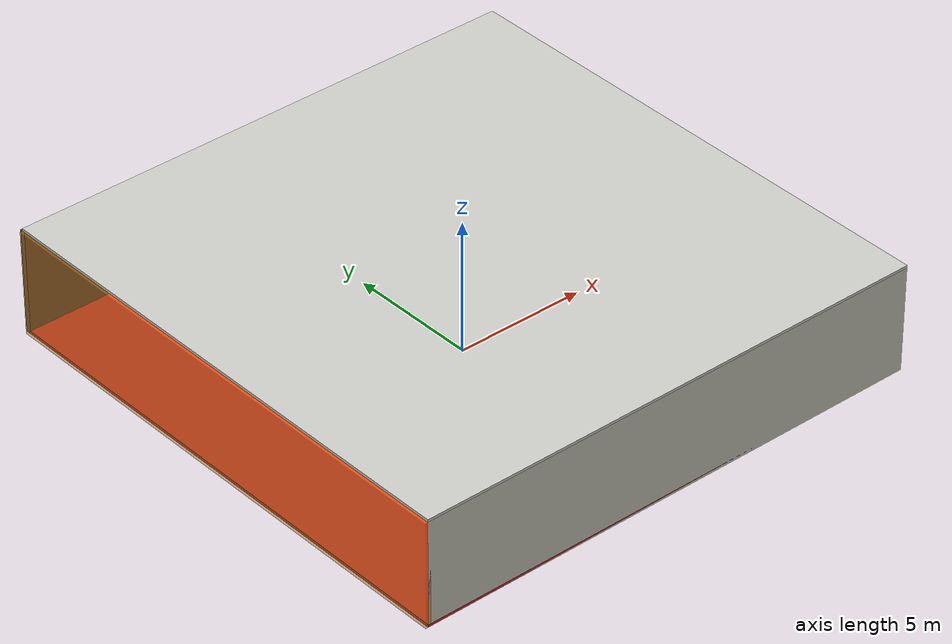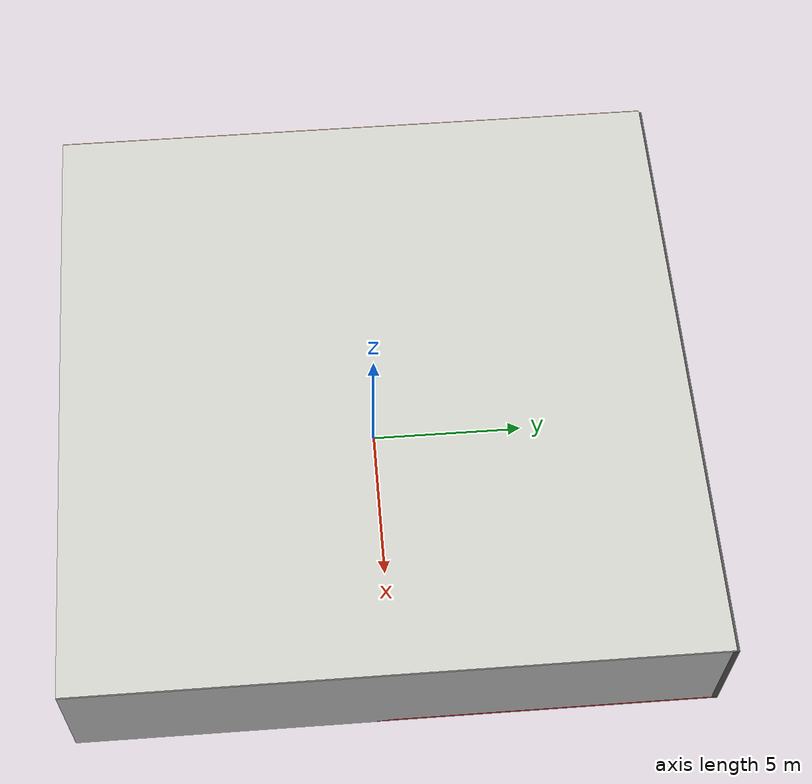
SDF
<sdf version="1.4">
 <world name="default">
  <physics type="ode">
   <max_step_size>0.001</max_step_size>
   <real_time_factor>1</real_time_factor>
   <real_time_update_rate>1000</real_time_update_rate>
   <gravity>0 0 -9.8</gravity>
  </physics>
  <scene><ambient>0.4 0.4 0.4 1</ambient><background>0.7 0.7 0.7 1</background><shadows>1</shadows></scene>
  <model name="Surrounding">
   <static>1</static>
   <link name="Ceiling">
    <collision name="Ceiling_Collision"><geometry><box><size>20 20 0.1</size></box></geometry></collision>
    <visual name="Ceiling_Visual">
     <geometry><box><size>20 20 0.1</size></box></geometry>
     <material>
      <script><uri>file://media/materials/scripts/gazebo.material</uri><name>Gazebo/CeilingTiled</name></script>
     </material>
    </visual>
    <pose>0 0 4.05 0 0 0</pose>
   </link>
   <link name="Wall_South">
    <collision name="Wall_South_Collision">
     <geometry><box><size>20 0 4</size></box></geometry>
     <pose>0 0 2 0 -0 0</pose>
    </collision>
    <visual name="Wall_South_Visual">
     <pose>0 0 2 0 -0 0</pose>
     <geometry><box><size>20 0 4</size></box></geometry>
     <material>
      <script><uri>file://media/materials/scripts/gazebo.material</uri><name>Gazebo/PaintedWall</name></script>
     </material>
    </visual>
    <velocity_decay><linear>0</linear><angular>0</angular></velocity_decay>
    <pose>0 -10 0 0 -0 0</pose>
   </link>
   <link name="Wall_East">
    <collision name="Wall_21_Collision">
     <geometry><box><size>20 0 4</size></box></geometry>
     <pose>0 0 2 0 -0 0</pose>
    </collision>
    <visual name="Wall_21_Visual">
     <pose>0 0 2 0 -0 0</pose>
     <geometry><box><size>20 0 4</size></box></geometry>
     <material>
      <script><uri>file://media/materials/scripts/gazebo.material</uri><name>Gazebo/JointAnchor</name></script>
     </material>
    </visual>
    <velocity_decay><linear>0</linear><angular>0</angular></velocity_decay>
    <pose>10 0 0 0 -0 1.5708</pose>
   </link>
   <link name="Wall_North">
    <collision name="Wall_22_Collision">
     <geometry><box><size>20 0.2 4</size></box></geometry>
     <pose>0 0 2 0 -0 0</pose>
    </collision>
    <visual name="Wall_22_Visual">
     <pose>0 0 2 0 -0 0</pose>
     <geometry><box><size>20 0.2 4</size></box></geometry>
     <material>
      <script><uri>file://media/materials/scripts/gazebo.material</uri><name>Gazebo/Road</name></script>
     </material>
    </visual>
    <velocity_decay><linear>0</linear><angular>0</angular></velocity_decay>
    <pose>0 10 0 0 -0 0</pose>
   </link>
   <link name="Wall_West">
    <collision name="Wall_23_Collision">
     <geometry><box><size>20 0.2 4</size></box></geometry>
     <pose>0 0 2 0 -0 0</pose>
    </collision>
    <visual name="Wall_23_Visual">
     <pose>0 0 2 0 -0 0</pose>
     <geometry><box><size>20 0.2 4</size></box></geometry>
     <material>
      <script>
       <uri>file://media/materials/scripts/gazebo.material</uri>
       <name>Gazebo/OrangeTransparent</name>
      </script>
     </material>
    </visual>
    <velocity_decay><linear>0</linear><angular>0</angular></velocity_decay>
    <pose>-10 0 0 0 0 -1.5708</pose>
   </link>
   <link name="Ground_link">
    <collision name="collision">
     <pose>0 0 .05 0 -0 0</pose>
     <geometry><box><size>20 20 0.1</size></box></geometry>
    </collision>
    <visual name="visual">
     <pose>0 0 .05 0 -0 0</pose>
     <geometry><box><size>20 20 0.1</size></box></geometry>
     <material>
      <script><uri>file://media/materials/scripts/gazebo.material</uri><name>Gazebo/Red</name></script>
     </material>
    </visual>
   </link>
   <static>1</static>
  </model>
  <spherical_coordinates>
   <surface_model>EARTH_WGS84</surface_model>
   <latitude_deg>0</latitude_deg>
   <longitude_deg>0</longitude_deg>
   <elevation>0</elevation>
   <heading_deg>0</heading_deg>
  </spherical_coordinates>
  <light name="lightball_0" type="diffuse">
   <diffuse>0.8 0.8 0.8 1</diffuse>
   <specular>0.2 0.2 0.2 1</specular>
   <attenuation>
    <range>100</range>
    <constant>0.7</constant>
    <linear>0.01</linear>
    <quadratic>0.001</quadratic>
   </attenuation>
   <direction>-0.5 0.1 -0.9</direction>
   <pose>-5.3351939628 -7.53227288824 1.20472613293 0 0 0</pose>
  </light>
  <light name="lightball_1" type="diffuse">
   <diffuse>0.8 0.8 0.8 1</diffuse>
   <specular>0.2 0.2 0.2 1</specular>
   <attenuation>
    <range>100</range>
    <constant>0.7</constant>
    <linear>0.01</linear>
    <quadratic>0.001</quadratic>
   </attenuation>
   <direction>-0.5 0.1 -0.9</direction>
   <pose>-6.24416345349 5.88859132371 0.526909690495 0 0 0</pose>
  </light>
  <light name="lightball_2" type="diffuse">
   <diffuse>0.8 0.8 0.8 1</diffuse>
   <specular>0.2 0.2 0.2 1</specular>
   <attenuation>
    <range>100</range>
    <constant>0.7</constant>
    <linear>0.01</linear>
    <quadratic>0.001</quadratic>
   </attenuation>
   <direction>-0.5 0.1 -0.9</direction>
   <pose>3.4542578075 3.29511208964 3.80956605434 0 0 0</pose>
  </light>
  <light name="lightball_3" type="diffuse">
   <diffuse>0.8 0.8 0.8 1</diffuse>
   <specular>0.2 0.2 0.2 1</specular>
   <attenuation>
    <range>100</range>
    <constant>0.7</constant>
    <linear>0.01</linear>
    <quadratic>0.001</quadratic>
   </attenuation>
   <direction>-0.5 0.1 -0.9</direction>
   <pose>3.51783365419 5.94740629272 2.694527762 0 0 0</pose>
  </light>
  <light name="lightball_4" type="diffuse">
   <diffuse>0.8 0.8 0.8 1</diffuse>
   <specular>0.2 0.2 0.2 1</specular>
   <attenuation>
    <range>100</range>
    <constant>0.7</constant>
    <linear>0.01</linear>
    <quadratic>0.001</quadratic>
   </attenuation>
   <direction>-0.5 0.1 -0.9</direction>
   <pose>-1.33420610254 -7.36421684718 1.81963370959 0 0 0</pose>
  </light>
  <light name="lightball_5" type="diffuse">
   <diffuse>0.8 0.8 0.8 1</diffuse>
   <specular>0.2 0.2 0.2 1</specular>
   <attenuation>
    <range>100</range>
    <constant>0.7</constant>
    <linear>0.01</linear>
    <quadratic>0.001</quadratic>
   </attenuation>
   <direction>-0.5 0.1 -0.9</direction>
   <pose>9.64683739185 4.5591571554 1.41186295405 0 0 0</pose>
  </light>
  <light name="lightball_6" type="diffuse">
   <diffuse>0.8 0.8 0.8 1</diffuse>
   <specular>0.2 0.2 0.2 1</specular>
   <attenuation>
    <range>100</range>
    <constant>0.7</constant>
    <linear>0.01</linear>
    <quadratic>0.001</quadratic>
   </attenuation>
   <direction>-0.5 0.1 -0.9</direction>
   <pose>4.77665174021 -6.77236389963 2.51509398776 0 0 0</pose>
  </light>
  <light name="lightball_7" type="diffuse">
   <diffuse>0.8 0.8 0.8 1</diffuse>
   <specular>0.2 0.2 0.2 1</specular>
   <attenuation>
    <range>100</range>
    <constant>0.7</constant>
    <linear>0.01</linear>
    <quadratic>0.001</quadratic>
   </attenuation>
   <direction>-0.5 0.1 -0.9</direction>
   <pose>4.20327269179 4.13472505917 2.18556078623 0 0 0</pose>
  </light>
  <light name="lightball_8" type="diffuse">
   <diffuse>0.8 0.8 0.8 1</diffuse>
   <specular>0.2 0.2 0.2 1</specular>
   <attenuation>
    <range>100</range>
    <constant>0.7</constant>
    <linear>0.01</linear>
    <quadratic>0.001</quadratic>
   </attenuation>
   <direction>-0.5 0.1 -0.9</direction>
   <pose>-9.76616433004 1.38758389199 2.38333311442 0 0 0</pose>
  </light>
  <light name="lightball_9" type="diffuse">
   <diffuse>0.8 0.8 0.8 1</diffuse>
   <specular>0.2 0.2 0.2 1</specular>
   <attenuation>
    <range>100</range>
    <constant>0.7</constant>
    <linear>0.01</linear>
    <quadratic>0.001</quadratic>
   </attenuation>
   <direction>-0.5 0.1 -0.9</direction>
   <pose>8.14063296685 8.57489072738 2.72181167761 0 0 0</pose>
  </light>
  <light name="lightball_10" type="diffuse">
   <diffuse>0.8 0.8 0.8 1</diffuse>
   <specular>0.2 0.2 0.2 1</specular>
   <attenuation>
    <range>100</range>
    <constant>0.7</constant>
    <linear>0.01</linear>
    <quadratic>0.001</quadratic>
   </attenuation>
   <direction>-0.5 0.1 -0.9</direction>
   <pose>1.07649197656 -1.14853533211 2.56781007709 0 0 0</pose>
  </light>
  <light name="lightball_11" type="diffuse">
   <diffuse>0.8 0.8 0.8 1</diffuse>
   <specular>0.2 0.2 0.2 1</specular>
   <attenuation>
    <range>100</range>
    <constant>0.7</constant>
    <linear>0.01</linear>
    <quadratic>0.001</quadratic>
   </attenuation>
   <direction>-0.5 0.1 -0.9</direction>
   <pose>-0.671762204549 6.13291593985 2.13404054798 0 0 0</pose>
  </light>
  <light name="lightball_12" type="diffuse">
   <diffuse>0.8 0.8 0.8 1</diffuse>
   <specular>0.2 0.2 0.2 1</specular>
   <attenuation>
    <range>100</range>
    <constant>0.7</constant>
    <linear>0.01</linear>
    <quadratic>0.001</quadratic>
   </attenuation>
   <direction>-0.5 0.1 -0.9</direction>
   <pose>5.4279689412 -6.20057888292 3.78652119729 0 0 0</pose>
  </light>
  <light name="lightball_13" type="diffuse">
   <diffuse>0.8 0.8 0.8 1</diffuse>
   <specular>0.2 0.2 0.2 1</specular>
   <attenuation>
    <range>100</range>
    <constant>0.7</constant>
    <linear>0.01</linear>
    <quadratic>0.001</quadratic>
   </attenuation>
   <direction>-0.5 0.1 -0.9</direction>
   <pose>-6.73699112071 -3.17892697233 2.35806212282 0 0 0</pose>
  </light>
  <include><uri>model://cabinet</uri><pose>-4.68185143893 -8.13862935854 0 0 0 1.07544071269</pose></include>
  <include>
   <uri>model://textured_shapes</uri>
   <pose>0.859514687983 4.42912058833 0 0 0 0.585144861967</pose>
  </include>
  <include>
   <uri>model://robocup_3Dsim_goal</uri>
   <pose>3.76310983323 2.28720924179 0 0 0 1.8188414856</pose>
  </include>
  <include>
   <uri>model://robocup_3Dsim_goal</uri>
   <pose>4.51375070322 6.91524108458 0 0 0 2.66582243018</pose>
  </include>
  <include><uri>model://cabinet</uri><pose>7.03467825491 3.80305616757 0 0 0 1.61569311598</pose></include>
 </world>
</sdf>

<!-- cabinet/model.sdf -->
<sdf version="1.5">
  <model name="cabinet">
    <static>true</static>
    <link name="cabinet_bottom_plate">
      <inertial>
        <pose>0 0 -1 0 0 0</pose>
        <inertia>
          <ixx>2.050000</ixx>
          <ixy>0</ixy>
          <ixz>0</ixz>
          <iyy>2.050000</iyy>
          <iyz>0</iyz>
          <izz>2.050000</izz>
        </inertia>
        <mass>25.000000</mass>
      </inertial>
      <collision name="cabinet_bottom_plate_geom">
        <pose>0 0 0.010000 0 0 0</pose>
        <geometry>
          <box>
            <size>0.450000 0.450000 0.020000</size>
          </box>
        </geometry>
      </collision>
      <visual name="cabinet_bottom_plate_geom_visual">
        <pose>0 0 0.010000 0 0 0</pose>
        <geometry>
          <box>
            <size>0.450000 0.450000 0.020000</size>
          </box>
        </geometry>
        <material>
          <script>
            <uri>model://media/materials/scripts/gazebo.material</uri>
            <name>Gazebo/Wood</name>
          </script>
        </material>
      </visual>
      <collision name="cabinet_bottom_plate_geom_cabinet_back_plate">
        <pose>0.235000 0 0.510000 0 0 0</pose>
        <geometry>
          <box>
            <size>0.020000 0.450000 1.020000</size>
          </box>
        </geometry>
      </collision>
      <visual name="cabinet_bottom_plate_geom_cabinet_back_plate_visual">
        <pose>0.235000 0 0.510000 0 0 0</pose>
        <geometry>
          <box>
            <size>0.020000 0.450000 1.020000</size>
          </box>
        </geometry>
        <material>
          <script>
            <uri>model://media/materials/scripts/gazebo.material</uri>
            <name>Gazebo/Wood</name>
          </script>
        </material>
      </visual>
      <collision name="cabinet_bottom_plate_geom_cabinet_left_plate">
        <pose>0 0.235000 0.510000 0 0 0</pose>
        <geometry>
          <box>
            <size>0.450000 0.020000 1.020000</size>
          </box>
        </geometry>
      </collision>
      <visual name="cabinet_bottom_plate_geom_cabinet_left_plate_visual">
        <pose>0 0.235000 0.510000 0 0 0</pose>
        <geometry>
          <box>
            <size>0.450000 0.020000 1.020000</size>
          </box>
        </geometry>
        <material>
          <script>
            <uri>model://media/materials/scripts/gazebo.material</uri>
            <name>Gazebo/Wood</name>
          </script>
        </material>
      </visual>
      <collision name="cabinet_bottom_plate_geom_cabinet_middle_plate">
        <pose>0 0 0.510000 0 0 0</pose>
        <geometry>
          <box>
            <size>0.450000 0.450000 0.020000</size>
          </box>
        </geometry>
      </collision>
      <visual name="cabinet_bottom_plate_geom_cabinet_middle_plate_visual">
        <pose>0 0 0.510000 0 0 0</pose>
        <geometry>
          <box>
            <size>0.450000 0.450000 0.020000</size>
          </box>
        </geometry>
        <material>
          <script>
            <uri>model://media/materials/scripts/gazebo.material</uri>
            <name>Gazebo/Wood</name>
          </script>
        </material>
      </visual>
      <collision name="cabinet_bottom_plate_geom_cabinet_right_plate">
        <pose>0 -0.235000 0.510000 0 0 0</pose>
        <geometry>
          <box>
            <size>0.450000 0.020000 1.020000</size>
          </box>
        </geometry>
      </collision>
      <visual name="cabinet_bottom_plate_geom_cabinet_right_plate_visual">
        <pose>0 -0.235000 0.510000 0 0 0</pose>
        <geometry>
          <box>
            <size>0.450000 0.020000 1.020000</size>
          </box>
        </geometry>
        <material>
          <script>
            <uri>model://media/materials/scripts/gazebo.material</uri>
            <name>Gazebo/Wood</name>
          </script>
        </material>
      </visual>
      <collision name="cabinet_bottom_plate_geom_cabinet_top_plate">
        <pose>0 0 1.010000 0 0 0</pose>
        <geometry>
          <box>
            <size>0.450000 0.450000 0.020000</size>
          </box>
        </geometry>
      </collision>
      <visual name="cabinet_bottom_plate_geom_cabinet_top_plate_visual">
        <pose>0 0 1.010000 0 0 0</pose>
        <geometry>
          <box>
            <size>0.450000 0.450000 0.020000</size>
          </box>
        </geometry>
        <material>
          <script>
            <uri>model://media/materials/scripts/gazebo.material</uri>
            <name>Gazebo/Wood</name>
          </script>
        </material>
      </visual>
    </link>
  </model>
</sdf>

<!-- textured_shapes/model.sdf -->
<sdf version="1.6">
  <model name="textured_shapes">
    <pose>0 0 0.5 0 0 0</pose>
    <link name="box">
      <pose>0 -1.5 0 0 0 0</pose>
      <collision name="collision">
        <geometry>
          <box>
            <size>1 1 1</size>
          </box>
        </geometry>
      </collision>
      <visual name="visual">
        <geometry>
          <box>
            <size>1 1 1</size>
          </box>
        </geometry>
        <material>
          <script>
            <uri>model://../model_source/models/textured_shapes/materials/scripts</uri>
            <uri>model://../model_source/models/textured_shapes/materials/textures</uri>
            <name>TexturedShape/Squares</name>
          </script>
        </material>
      </visual>
    </link>
    <link name="sphere">
      <collision name="collision">
        <geometry>
          <sphere>
            <radius>0.5</radius>
          </sphere>
        </geometry>
      </collision>
      <visual name="visual">
        <geometry>
          <sphere>
            <radius>0.5</radius>
          </sphere>
        </geometry>
        <material>
          <script>
            <uri>model://../model_source/models/textured_shapes/materials/scripts</uri>
            <uri>model://../model_source/models/textured_shapes/materials/textures</uri>
            <name>TexturedShape/Squares</name>
          </script>
        </material>
      </visual>
    </link>
    <link name="cylinder">
      <pose>0 1.5 0 0 0 0</pose>
      <collision name="collision">
        <geometry>
          <cylinder>
            <radius>0.5</radius>
            <length>1</length>
          </cylinder>
        </geometry>
      </collision>
      <visual name="visual">
        <geometry>
          <cylinder>
            <radius>0.5</radius>
            <length>1</length>
          </cylinder>
        </geometry>
        <material>
          <script>
            <uri>model://../model_source/models/textured_shapes/materials/scripts</uri>
            <uri>model://../model_source/models/textured_shapes/materials/textures</uri>
            <name>TexturedShape/Squares</name>
          </script>
        </material>
      </visual>
    </link>
  </model>
</sdf>

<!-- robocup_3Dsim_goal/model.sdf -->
<sdf version="1.5">
  <model name="robocup_3d_goal">
    <static>true</static>
    <link name="left_post">
      <pose>0 1.05 0.45 0 0 0</pose>
      <collision name="collision">
        <geometry>
          <cylinder>
            <radius>0.05</radius>
            <length>0.9</length>
          </cylinder>
        </geometry>
      </collision>
      <visual name="visual">
        <geometry>
          <cylinder>
            <radius>0.05</radius>
            <length>0.9</length>
          </cylinder>
        </geometry>
        <material>
          <script>
            <uri>file://media/materials/scripts/gazebo.material</uri>
            <name>Gazebo/ZincYellow</name>
          </script>
        </material>
      </visual>
    </link>
    <link name="left_support_horiz_lower">
      <pose>0.30 1.05 0.01 0 0 0</pose>
      <collision name="collision">
        <geometry>
          <box>
            <size>0.50 0.02 0.02</size>
          </box>
        </geometry>
      </collision>
      <visual name="visual">
        <geometry>
          <box>
            <size>0.50 0.02 0.02</size>
          </box>
        </geometry>
        <material>
          <script>
            <uri>file://media/materials/scripts/gazebo.material</uri>
            <name>Gazebo/White</name>
          </script>
        </material>
      </visual>
    </link>
    <link name="left_support_horiz_upper">
      <pose>0.30 1.05 0.79 0 0 0</pose>
      <collision name="collision">
        <geometry>
          <box>
            <size>0.50 0.02 0.02</size>
          </box>
        </geometry>
      </collision>
      <visual name="visual">
        <geometry>
          <box>
            <size>0.50 0.02 0.02</size>
          </box>
        </geometry>
        <material>
          <script>
            <uri>file://media/materials/scripts/gazebo.material</uri>
            <name>Gazebo/White</name>
          </script>
        </material>
      </visual>
    </link>
    <link name="left_support_vertical">
      <pose>0.56 1.05 0.4 0 1.5708 0</pose>
      <collision name="collision">
        <geometry>
          <box>
            <size>0.80 0.02 0.02</size>
          </box>
        </geometry>
      </collision>
      <visual name="visual">
        <geometry>
          <box>
            <size>0.80 0.02 0.02</size>
          </box>
        </geometry>
        <material>
          <script>
            <uri>file://media/materials/scripts/gazebo.material</uri>
            <name>Gazebo/White</name>
          </script>
        </material>
      </visual>
    </link>
    <link name="right_support_horiz_lower">
      <pose>0.30 -1.05 0.01 0 0 0</pose>
      <collision name="collision">
        <geometry>
          <box>
            <size>0.50 0.02 0.02</size>
          </box>
        </geometry>
      </collision>
      <visual name="visual">
        <geometry>
          <box>
            <size>0.50 0.02 0.02</size>
          </box>
        </geometry>
        <material>
          <script>
            <uri>file://media/materials/scripts/gazebo.material</uri>
            <name>Gazebo/White</name>
          </script>
        </material>
      </visual>
    </link>
    <link name="right_support_horiz_upper">
      <pose>0.30 -1.05 0.79 0 0 0</pose>
      <collision name="collision">
        <geometry>
          <box>
            <size>0.50 0.02 0.02</size>
          </box>
        </geometry>
      </collision>
      <visual name="visual">
        <geometry>
          <box>
            <size>0.50 0.02 0.02</size>
          </box>
        </geometry>
        <material>
          <script>
            <uri>file://media/materials/scripts/gazebo.material</uri>
            <name>Gazebo/White</name>
          </script>
        </material>
      </visual>
    </link>
    <link name="right_support_vertical">
      <pose>0.56 -1.05 0.4 0 1.5708 0</pose>
      <collision name="collision">
        <geometry>
          <box>
            <size>0.80 0.02 0.02</size>
          </box>
        </geometry>
      </collision>
      <visual name="visual">
        <geometry>
          <box>
            <size>0.80 0.02 0.02</size>
          </box>
        </geometry>
        <material>
          <script>
            <uri>file://media/materials/scripts/gazebo.material</uri>
            <name>Gazebo/White</name>
          </script>
        </material>
      </visual>
    </link>
    <link name="center_support_horiz_lower">
      <pose>0.56 0 0.01 0 1.5708 0</pose>
      <collision name="collision">
        <geometry>
          <box>
            <size>0.02 2.08 0.02</size>
          </box>
        </geometry>
      </collision>
      <visual name="visual">
        <geometry>
          <box>
            <size>0.02 2.08 0.02</size>
          </box>
        </geometry>
        <material>
          <script>
            <uri>file://media/materials/scripts/gazebo.material</uri>
            <name>Gazebo/White</name>
          </script>
        </material>
      </visual>
    </link>
    <link name="center_support_horiz_upper">
      <pose>0.56 0 0.79 0 1.5708 0</pose>
      <collision name="collision">
        <geometry>
          <box>
            <size>0.02 2.08 0.02</size>
          </box>
        </geometry>
      </collision>
      <visual name="visual">
        <geometry>
          <box>
            <size>0.02 2.08 0.02</size>
          </box>
        </geometry>
        <material>
          <script>
            <uri>file://media/materials/scripts/gazebo.material</uri>
            <name>Gazebo/White</name>
          </script>
        </material>
      </visual>
    </link>
    <link name="right_post">
      <pose>0 -1.05 0.45 0 0 0</pose>
      <collision name="collision">
        <geometry>
          <cylinder>
            <radius>0.05</radius>
            <length>0.9</length>
          </cylinder>
        </geometry>
      </collision>
      <visual name="visual">
        <geometry>
          <cylinder>
            <radius>0.05</radius>
            <length>0.9</length>
          </cylinder>
        </geometry>
        <material>
          <script>
            <uri>file://media/materials/scripts/gazebo.material</uri>
            <name>Gazebo/ZincYellow</name>
          </script>
        </material>
      </visual>
    </link>
    <link name="crossbar">
      <pose>0 0 0.85 1.57 1.57 0</pose>
      <collision name="collision">
        <geometry>
          <cylinder>
            <radius>0.05</radius>
            <length>2.0</length>
          </cylinder>
        </geometry>
      </collision>
      <visual name="visual">
        <geometry>
          <cylinder>
            <radius>0.05</radius>
            <length>2.0</length>
          </cylinder>
        </geometry>
        <material>
          <script>
            <uri>file://media/materials/scripts/gazebo.material</uri>
            <name>Gazebo/ZincYellow</name>
          </script>
        </material>
      </visual>
    </link>
    <link name="center_net">
      <pose>0.56 0 0.40 0 0 0</pose>
      <collision name="collision">
        <geometry>
          <box>
            <size>0.01 2.1 0.80</size>
          </box>
        </geometry>
      </collision>
      <visual name="visual">
        <geometry>
          <box>
            <size>0.01 2.1 0.80</size>
          </box>
        </geometry>
        <material>
          <script>
            <uri>model://../model_source/models/robocup09_spl_field/materials/scripts/</uri>
            <uri>model://../model_source/models/robocup09_spl_field/materials/textures/</uri>
            <name>RoboCup/Net</name>
          </script>
        </material>
      </visual>
    </link>
    <link name="left_net">
      <pose>0.30 1.05 0.40 0 0 0</pose>
      <collision name="collision">
        <geometry>
          <box>
            <size>0.50 0.01 0.76</size>
          </box>
        </geometry>
      </collision>
      <visual name="visual">
        <geometry>
          <box>
            <size>0.50 0.01 0.76</size>
          </box>
        </geometry>
        <material>
          <script>
            <uri>model://../model_source/models/robocup09_spl_field/materials/scripts/</uri>
            <uri>model://../model_source/models/robocup09_spl_field/materials/textures/</uri>
            <name>RoboCup/Net</name>
          </script>
        </material>
      </visual>
    </link>
    <link name="right_net">
      <pose>0.30 -1.05 0.40 0 0 0</pose>
      <collision name="collision">
        <geometry>
          <box>
            <size>0.50 0.01 0.76</size>
          </box>
        </geometry>
      </collision>
      <visual name="visual">
        <geometry>
          <box>
            <size>0.50 0.01 0.76</size>
          </box>
        </geometry>
        <material>
          <script>
            <uri>model://../model_source/models/robocup09_spl_field/materials/scripts/</uri>
            <uri>model://../model_source/models/robocup09_spl_field/materials/textures/</uri>
            <name>RoboCup/Net</name>
          </script>
        </material>
      </visual>
    </link>
  </model>
</sdf>
